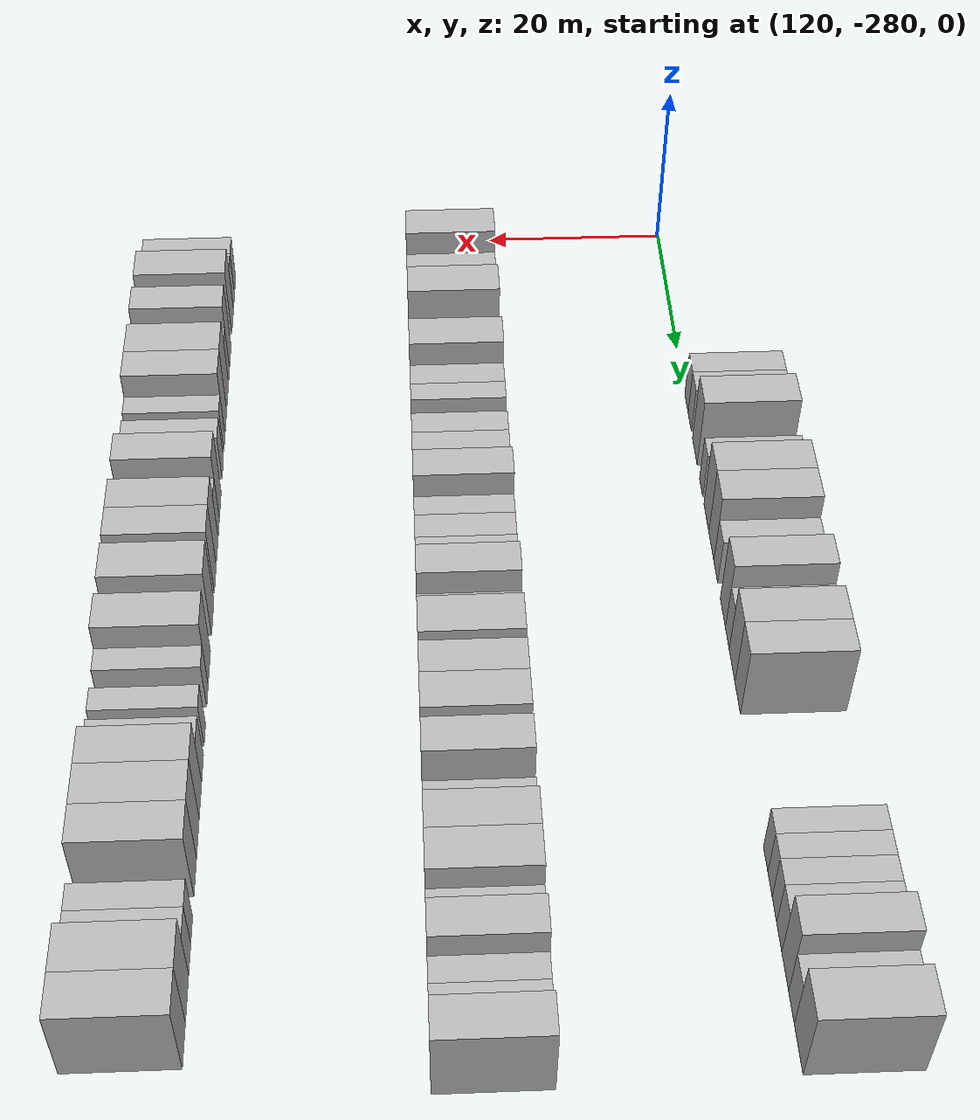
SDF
<sdf version="1.6">
 <world name="default">
  <model name="building_726">
   <static>1</static>
   <pose>115.0000 -251.1635 0 0.000000 0.000000 0.000000</pose>
   <link name="link">
    <pose>0 0 3.00 0 0 0</pose>
    <collision name="collision"><geometry><box><size>10.0000 2.9496 6.0000</size></box></geometry></collision>
    <visual name="visual">
     <cast_shadows>0</cast_shadows>
     <geometry><box><size>10.0000 2.9496 6.0000</size></box></geometry>
     <material>
      <script>
       <uri>model://HANNAS_wall/materials/scripts</uri>
       <uri>model://HANNAS_wall/materials/textures</uri>
       <name>vrc/HANNAS_wall</name>
      </script>
     </material>
    </visual>
   </link>
  </model>
  <model name="building_727">
   <static>1</static>
   <pose>115.0000 -248.2471 0 0.000000 0.000000 0.000000</pose>
   <link name="link">
    <pose>0 0 3.00 0 0 0</pose>
    <collision name="collision"><geometry><box><size>10.0000 2.8832 6.0000</size></box></geometry></collision>
    <visual name="visual">
     <cast_shadows>0</cast_shadows>
     <geometry><box><size>10.0000 2.8832 6.0000</size></box></geometry>
     <material>
      <script>
       <uri>model://HANNAS_wall/materials/scripts</uri>
       <uri>model://HANNAS_wall/materials/textures</uri>
       <name>vrc/HANNAS_wall</name>
      </script>
     </material>
    </visual>
   </link>
  </model>
  <model name="building_728">
   <static>1</static>
   <pose>115.0000 -243.7850 0 0.000000 0.000000 0.000000</pose>
   <link name="link">
    <pose>0 0 4.50 0 0 0</pose>
    <collision name="collision"><geometry><box><size>10.0000 4.0409 9.0000</size></box></geometry></collision>
    <visual name="visual">
     <cast_shadows>0</cast_shadows>
     <geometry><box><size>10.0000 4.0409 9.0000</size></box></geometry>
     <material>
      <script>
       <uri>model://HANNAS_wall/materials/scripts</uri>
       <uri>model://HANNAS_wall/materials/textures</uri>
       <name>vrc/HANNAS_wall</name>
      </script>
     </material>
    </visual>
   </link>
  </model>
  <model name="building_729">
   <static>1</static>
   <pose>115.0000 -238.4365 0 0.000000 0.000000 0.000000</pose>
   <link name="link">
    <pose>0 0 3.00 0 0 0</pose>
    <collision name="collision"><geometry><box><size>10.0000 2.6561 6.0000</size></box></geometry></collision>
    <visual name="visual">
     <cast_shadows>0</cast_shadows>
     <geometry><box><size>10.0000 2.6561 6.0000</size></box></geometry>
     <material>
      <script>
       <uri>model://HANNAS_wall/materials/scripts</uri>
       <uri>model://HANNAS_wall/materials/textures</uri>
       <name>vrc/HANNAS_wall</name>
      </script>
     </material>
    </visual>
   </link>
  </model>
  <model name="building_730">
   <static>1</static>
   <pose>115.0000 -234.1329 0 0.000000 0.000000 0.000000</pose>
   <link name="link">
    <pose>0 0 4.50 0 0 0</pose>
    <collision name="collision"><geometry><box><size>10.0000 3.9511 9.0000</size></box></geometry></collision>
    <visual name="visual">
     <cast_shadows>0</cast_shadows>
     <geometry><box><size>10.0000 3.9511 9.0000</size></box></geometry>
     <material>
      <script>
       <uri>model://HANNAS_wall/materials/scripts</uri>
       <uri>model://HANNAS_wall/materials/textures</uri>
       <name>vrc/HANNAS_wall</name>
      </script>
     </material>
    </visual>
   </link>
  </model>
  <model name="building_731">
   <static>1</static>
   <pose>115.0000 -230.1869 0 0.000000 0.000000 0.000000</pose>
   <link name="link">
    <pose>0 0 4.50 0 0 0</pose>
    <collision name="collision"><geometry><box><size>10.0000 3.9409 9.0000</size></box></geometry></collision>
    <visual name="visual">
     <cast_shadows>0</cast_shadows>
     <geometry><box><size>10.0000 3.9409 9.0000</size></box></geometry>
     <material>
      <script>
       <uri>model://HANNAS_wall/materials/scripts</uri>
       <uri>model://HANNAS_wall/materials/textures</uri>
       <name>vrc/HANNAS_wall</name>
      </script>
     </material>
    </visual>
   </link>
  </model>
  <model name="building_732">
   <static>1</static>
   <pose>115.0000 -226.7508 0 0.000000 0.000000 0.000000</pose>
   <link name="link">
    <pose>0 0 3.00 0 0 0</pose>
    <collision name="collision"><geometry><box><size>10.0000 2.9313 6.0000</size></box></geometry></collision>
    <visual name="visual">
     <cast_shadows>0</cast_shadows>
     <geometry><box><size>10.0000 2.9313 6.0000</size></box></geometry>
     <material>
      <script>
       <uri>model://HANNAS_wall/materials/scripts</uri>
       <uri>model://HANNAS_wall/materials/textures</uri>
       <name>vrc/HANNAS_wall</name>
      </script>
     </material>
    </visual>
   </link>
  </model>
  <model name="building_733">
   <static>1</static>
   <pose>115.0000 -221.4200 0 0.000000 0.000000 0.000000</pose>
   <link name="link">
    <pose>0 0 4.50 0 0 0</pose>
    <collision name="collision"><geometry><box><size>10.0000 3.7304 9.0000</size></box></geometry></collision>
    <visual name="visual">
     <cast_shadows>0</cast_shadows>
     <geometry><box><size>10.0000 3.7304 9.0000</size></box></geometry>
     <material>
      <script>
       <uri>model://HANNAS_wall/materials/scripts</uri>
       <uri>model://HANNAS_wall/materials/textures</uri>
       <name>vrc/HANNAS_wall</name>
      </script>
     </material>
    </visual>
   </link>
  </model>
  <model name="building_734">
   <static>1</static>
   <pose>115.0000 -218.1900 0 0.000000 0.000000 0.000000</pose>
   <link name="link">
    <pose>0 0 3.00 0 0 0</pose>
    <collision name="collision"><geometry><box><size>10.0000 2.7296 6.0000</size></box></geometry></collision>
    <visual name="visual">
     <cast_shadows>0</cast_shadows>
     <geometry><box><size>10.0000 2.7296 6.0000</size></box></geometry>
     <material>
      <script>
       <uri>model://HANNAS_wall/materials/scripts</uri>
       <uri>model://HANNAS_wall/materials/textures</uri>
       <name>vrc/HANNAS_wall</name>
      </script>
     </material>
    </visual>
   </link>
  </model>
  <model name="building_735">
   <static>1</static>
   <pose>115.0000 -214.8161 0 0.000000 0.000000 0.000000</pose>
   <link name="link">
    <pose>0 0 4.50 0 0 0</pose>
    <collision name="collision"><geometry><box><size>10.0000 4.0182 9.0000</size></box></geometry></collision>
    <visual name="visual">
     <cast_shadows>0</cast_shadows>
     <geometry><box><size>10.0000 4.0182 9.0000</size></box></geometry>
     <material>
      <script>
       <uri>model://HANNAS_wall/materials/scripts</uri>
       <uri>model://HANNAS_wall/materials/textures</uri>
       <name>vrc/HANNAS_wall</name>
      </script>
     </material>
    </visual>
   </link>
  </model>
  <model name="building_736">
   <static>1</static>
   <pose>115.0000 -210.9222 0 0.000000 0.000000 0.000000</pose>
   <link name="link">
    <pose>0 0 4.50 0 0 0</pose>
    <collision name="collision"><geometry><box><size>10.0000 3.7697 9.0000</size></box></geometry></collision>
    <visual name="visual">
     <cast_shadows>0</cast_shadows>
     <geometry><box><size>10.0000 3.7697 9.0000</size></box></geometry>
     <material>
      <script>
       <uri>model://HANNAS_wall/materials/scripts</uri>
       <uri>model://HANNAS_wall/materials/textures</uri>
       <name>vrc/HANNAS_wall</name>
      </script>
     </material>
    </visual>
   </link>
  </model>
  <model name="building_737">
   <static>1</static>
   <pose>115.0000 -193.1905 0 0.000000 0.000000 0.000000</pose>
   <link name="link">
    <pose>0 0 3.00 0 0 0</pose>
    <collision name="collision"><geometry><box><size>10.0000 2.5645 6.0000</size></box></geometry></collision>
    <visual name="visual">
     <cast_shadows>0</cast_shadows>
     <geometry><box><size>10.0000 2.5645 6.0000</size></box></geometry>
     <material>
      <script>
       <uri>model://HANNAS_wall/materials/scripts</uri>
       <uri>model://HANNAS_wall/materials/textures</uri>
       <name>vrc/HANNAS_wall</name>
      </script>
     </material>
    </visual>
   </link>
  </model>
  <model name="building_738">
   <static>1</static>
   <pose>115.0000 -190.6692 0 0.000000 0.000000 0.000000</pose>
   <link name="link">
    <pose>0 0 3.00 0 0 0</pose>
    <collision name="collision"><geometry><box><size>10.0000 2.4781 6.0000</size></box></geometry></collision>
    <visual name="visual">
     <cast_shadows>0</cast_shadows>
     <geometry><box><size>10.0000 2.4781 6.0000</size></box></geometry>
     <material>
      <script>
       <uri>model://HANNAS_wall/materials/scripts</uri>
       <uri>model://HANNAS_wall/materials/textures</uri>
       <name>vrc/HANNAS_wall</name>
      </script>
     </material>
    </visual>
   </link>
  </model>
  <model name="building_739">
   <static>1</static>
   <pose>115.0000 -188.1476 0 0.000000 0.000000 0.000000</pose>
   <link name="link">
    <pose>0 0 3.00 0 0 0</pose>
    <collision name="collision"><geometry><box><size>10.0000 2.5651 6.0000</size></box></geometry></collision>
    <visual name="visual">
     <cast_shadows>0</cast_shadows>
     <geometry><box><size>10.0000 2.5651 6.0000</size></box></geometry>
     <material>
      <script>
       <uri>model://HANNAS_wall/materials/scripts</uri>
       <uri>model://HANNAS_wall/materials/textures</uri>
       <name>vrc/HANNAS_wall</name>
      </script>
     </material>
    </visual>
   </link>
  </model>
  <model name="building_740">
   <static>1</static>
   <pose>115.0000 -185.4330 0 0.000000 0.000000 0.000000</pose>
   <link name="link">
    <pose>0 0 3.00 0 0 0</pose>
    <collision name="collision"><geometry><box><size>10.0000 2.8641 6.0000</size></box></geometry></collision>
    <visual name="visual">
     <cast_shadows>0</cast_shadows>
     <geometry><box><size>10.0000 2.8641 6.0000</size></box></geometry>
     <material>
      <script>
       <uri>model://HANNAS_wall/materials/scripts</uri>
       <uri>model://HANNAS_wall/materials/textures</uri>
       <name>vrc/HANNAS_wall</name>
      </script>
     </material>
    </visual>
   </link>
  </model>
  <model name="building_741">
   <static>1</static>
   <pose>115.0000 -182.1926 0 0.000000 0.000000 0.000000</pose>
   <link name="link">
    <pose>0 0 4.50 0 0 0</pose>
    <collision name="collision"><geometry><box><size>10.0000 3.6168 9.0000</size></box></geometry></collision>
    <visual name="visual">
     <cast_shadows>0</cast_shadows>
     <geometry><box><size>10.0000 3.6168 9.0000</size></box></geometry>
     <material>
      <script>
       <uri>model://HANNAS_wall/materials/scripts</uri>
       <uri>model://HANNAS_wall/materials/textures</uri>
       <name>vrc/HANNAS_wall</name>
      </script>
     </material>
    </visual>
   </link>
  </model>
  <model name="building_742">
   <static>1</static>
   <pose>115.0000 -178.8899 0 0.000000 0.000000 0.000000</pose>
   <link name="link">
    <pose>0 0 3.00 0 0 0</pose>
    <collision name="collision"><geometry><box><size>10.0000 2.9885 6.0000</size></box></geometry></collision>
    <visual name="visual">
     <cast_shadows>0</cast_shadows>
     <geometry><box><size>10.0000 2.9885 6.0000</size></box></geometry>
     <material>
      <script>
       <uri>model://HANNAS_wall/materials/scripts</uri>
       <uri>model://HANNAS_wall/materials/textures</uri>
       <name>vrc/HANNAS_wall</name>
      </script>
     </material>
    </visual>
   </link>
  </model>
  <model name="building_743">
   <static>1</static>
   <pose>115.0000 -175.1686 0 0.000000 0.000000 0.000000</pose>
   <link name="link">
    <pose>0 0 4.50 0 0 0</pose>
    <collision name="collision"><geometry><box><size>10.0000 4.4540 9.0000</size></box></geometry></collision>
    <visual name="visual">
     <cast_shadows>0</cast_shadows>
     <geometry><box><size>10.0000 4.4540 9.0000</size></box></geometry>
     <material>
      <script>
       <uri>model://HANNAS_wall/materials/scripts</uri>
       <uri>model://HANNAS_wall/materials/textures</uri>
       <name>vrc/HANNAS_wall</name>
      </script>
     </material>
    </visual>
   </link>
  </model>
  <model name="building_956">
   <static>1</static>
   <pose>145.0000 -272.5599 0 0.000000 0.000000 0.000000</pose>
   <link name="link">
    <pose>0 0 4.50 0 0 0</pose>
    <collision name="collision"><geometry><box><size>10.0000 4.1303 9.0000</size></box></geometry></collision>
    <visual name="visual">
     <cast_shadows>0</cast_shadows>
     <geometry><box><size>10.0000 4.1303 9.0000</size></box></geometry>
     <material>
      <script>
       <uri>model://HANNAS_wall/materials/scripts</uri>
       <uri>model://HANNAS_wall/materials/textures</uri>
       <name>vrc/HANNAS_wall</name>
      </script>
     </material>
    </visual>
   </link>
  </model>
  <model name="building_957">
   <static>1</static>
   <pose>145.0000 -269.0523 0 0.000000 0.000000 0.000000</pose>
   <link name="link">
    <pose>0 0 3.00 0 0 0</pose>
    <collision name="collision"><geometry><box><size>10.0000 2.8851 6.0000</size></box></geometry></collision>
    <visual name="visual">
     <cast_shadows>0</cast_shadows>
     <geometry><box><size>10.0000 2.8851 6.0000</size></box></geometry>
     <material>
      <script>
       <uri>model://HANNAS_wall/materials/scripts</uri>
       <uri>model://HANNAS_wall/materials/textures</uri>
       <name>vrc/HANNAS_wall</name>
      </script>
     </material>
    </visual>
   </link>
  </model>
  <model name="building_958">
   <static>1</static>
   <pose>145.0000 -266.1619 0 0.000000 0.000000 0.000000</pose>
   <link name="link">
    <pose>0 0 3.00 0 0 0</pose>
    <collision name="collision"><geometry><box><size>10.0000 2.8956 6.0000</size></box></geometry></collision>
    <visual name="visual">
     <cast_shadows>0</cast_shadows>
     <geometry><box><size>10.0000 2.8956 6.0000</size></box></geometry>
     <material>
      <script>
       <uri>model://HANNAS_wall/materials/scripts</uri>
       <uri>model://HANNAS_wall/materials/textures</uri>
       <name>vrc/HANNAS_wall</name>
      </script>
     </material>
    </visual>
   </link>
  </model>
  <model name="building_959">
   <static>1</static>
   <pose>145.0000 -262.6146 0 0.000000 0.000000 0.000000</pose>
   <link name="link">
    <pose>0 0 4.50 0 0 0</pose>
    <collision name="collision"><geometry><box><size>10.0000 4.1991 9.0000</size></box></geometry></collision>
    <visual name="visual">
     <cast_shadows>0</cast_shadows>
     <geometry><box><size>10.0000 4.1991 9.0000</size></box></geometry>
     <material>
      <script>
       <uri>model://HANNAS_wall/materials/scripts</uri>
       <uri>model://HANNAS_wall/materials/textures</uri>
       <name>vrc/HANNAS_wall</name>
      </script>
     </material>
    </visual>
   </link>
  </model>
  <model name="building_960">
   <static>1</static>
   <pose>145.0000 -257.2790 0 0.000000 0.000000 0.000000</pose>
   <link name="link">
    <pose>0 0 3.00 0 0 0</pose>
    <collision name="collision"><geometry><box><size>10.0000 2.4721 6.0000</size></box></geometry></collision>
    <visual name="visual">
     <cast_shadows>0</cast_shadows>
     <geometry><box><size>10.0000 2.4721 6.0000</size></box></geometry>
     <material>
      <script>
       <uri>model://HANNAS_wall/materials/scripts</uri>
       <uri>model://HANNAS_wall/materials/textures</uri>
       <name>vrc/HANNAS_wall</name>
      </script>
     </material>
    </visual>
   </link>
  </model>
  <model name="building_961">
   <static>1</static>
   <pose>145.0000 -254.0074 0 0.000000 0.000000 0.000000</pose>
   <link name="link">
    <pose>0 0 4.50 0 0 0</pose>
    <collision name="collision"><geometry><box><size>10.0000 4.0711 9.0000</size></box></geometry></collision>
    <visual name="visual">
     <cast_shadows>0</cast_shadows>
     <geometry><box><size>10.0000 4.0711 9.0000</size></box></geometry>
     <material>
      <script>
       <uri>model://HANNAS_wall/materials/scripts</uri>
       <uri>model://HANNAS_wall/materials/textures</uri>
       <name>vrc/HANNAS_wall</name>
      </script>
     </material>
    </visual>
   </link>
  </model>
  <model name="building_962">
   <static>1</static>
   <pose>145.0000 -250.5220 0 0.000000 0.000000 0.000000</pose>
   <link name="link">
    <pose>0 0 3.00 0 0 0</pose>
    <collision name="collision"><geometry><box><size>10.0000 2.8998 6.0000</size></box></geometry></collision>
    <visual name="visual">
     <cast_shadows>0</cast_shadows>
     <geometry><box><size>10.0000 2.8998 6.0000</size></box></geometry>
     <material>
      <script>
       <uri>model://HANNAS_wall/materials/scripts</uri>
       <uri>model://HANNAS_wall/materials/textures</uri>
       <name>vrc/HANNAS_wall</name>
      </script>
     </material>
    </visual>
   </link>
  </model>
  <model name="building_963">
   <static>1</static>
   <pose>145.0000 -247.8435 0 0.000000 0.000000 0.000000</pose>
   <link name="link">
    <pose>0 0 3.00 0 0 0</pose>
    <collision name="collision"><geometry><box><size>10.0000 2.4572 6.0000</size></box></geometry></collision>
    <visual name="visual">
     <cast_shadows>0</cast_shadows>
     <geometry><box><size>10.0000 2.4572 6.0000</size></box></geometry>
     <material>
      <script>
       <uri>model://HANNAS_wall/materials/scripts</uri>
       <uri>model://HANNAS_wall/materials/textures</uri>
       <name>vrc/HANNAS_wall</name>
      </script>
     </material>
    </visual>
   </link>
  </model>
  <model name="building_964">
   <static>1</static>
   <pose>145.0000 -243.2020 0 0.000000 0.000000 0.000000</pose>
   <link name="link">
    <pose>0 0 3.00 0 0 0</pose>
    <collision name="collision"><geometry><box><size>10.0000 2.8258 6.0000</size></box></geometry></collision>
    <visual name="visual">
     <cast_shadows>0</cast_shadows>
     <geometry><box><size>10.0000 2.8258 6.0000</size></box></geometry>
     <material>
      <script>
       <uri>model://HANNAS_wall/materials/scripts</uri>
       <uri>model://HANNAS_wall/materials/textures</uri>
       <name>vrc/HANNAS_wall</name>
      </script>
     </material>
    </visual>
   </link>
  </model>
  <model name="building_965">
   <static>1</static>
   <pose>145.0000 -240.2988 0 0.000000 0.000000 0.000000</pose>
   <link name="link">
    <pose>0 0 3.00 0 0 0</pose>
    <collision name="collision"><geometry><box><size>10.0000 2.9807 6.0000</size></box></geometry></collision>
    <visual name="visual">
     <cast_shadows>0</cast_shadows>
     <geometry><box><size>10.0000 2.9807 6.0000</size></box></geometry>
     <material>
      <script>
       <uri>model://HANNAS_wall/materials/scripts</uri>
       <uri>model://HANNAS_wall/materials/textures</uri>
       <name>vrc/HANNAS_wall</name>
      </script>
     </material>
    </visual>
   </link>
  </model>
  <model name="building_966">
   <static>1</static>
   <pose>145.0000 -237.5586 0 0.000000 0.000000 0.000000</pose>
   <link name="link">
    <pose>0 0 3.00 0 0 0</pose>
    <collision name="collision"><geometry><box><size>10.0000 2.4996 6.0000</size></box></geometry></collision>
    <visual name="visual">
     <cast_shadows>0</cast_shadows>
     <geometry><box><size>10.0000 2.4996 6.0000</size></box></geometry>
     <material>
      <script>
       <uri>model://HANNAS_wall/materials/scripts</uri>
       <uri>model://HANNAS_wall/materials/textures</uri>
       <name>vrc/HANNAS_wall</name>
      </script>
     </material>
    </visual>
   </link>
  </model>
  <model name="building_967">
   <static>1</static>
   <pose>145.0000 -234.4930 0 0.000000 0.000000 0.000000</pose>
   <link name="link">
    <pose>0 0 4.50 0 0 0</pose>
    <collision name="collision"><geometry><box><size>10.0000 3.6317 9.0000</size></box></geometry></collision>
    <visual name="visual">
     <cast_shadows>0</cast_shadows>
     <geometry><box><size>10.0000 3.6317 9.0000</size></box></geometry>
     <material>
      <script>
       <uri>model://HANNAS_wall/materials/scripts</uri>
       <uri>model://HANNAS_wall/materials/textures</uri>
       <name>vrc/HANNAS_wall</name>
      </script>
     </material>
    </visual>
   </link>
  </model>
  <model name="building_968">
   <static>1</static>
   <pose>145.0000 -231.4383 0 0.000000 0.000000 0.000000</pose>
   <link name="link">
    <pose>0 0 3.00 0 0 0</pose>
    <collision name="collision"><geometry><box><size>10.0000 2.4777 6.0000</size></box></geometry></collision>
    <visual name="visual">
     <cast_shadows>0</cast_shadows>
     <geometry><box><size>10.0000 2.4777 6.0000</size></box></geometry>
     <material>
      <script>
       <uri>model://HANNAS_wall/materials/scripts</uri>
       <uri>model://HANNAS_wall/materials/textures</uri>
       <name>vrc/HANNAS_wall</name>
      </script>
     </material>
    </visual>
   </link>
  </model>
  <model name="building_969">
   <static>1</static>
   <pose>145.0000 -228.7089 0 0.000000 0.000000 0.000000</pose>
   <link name="link">
    <pose>0 0 3.00 0 0 0</pose>
    <collision name="collision"><geometry><box><size>10.0000 2.9811 6.0000</size></box></geometry></collision>
    <visual name="visual">
     <cast_shadows>0</cast_shadows>
     <geometry><box><size>10.0000 2.9811 6.0000</size></box></geometry>
     <material>
      <script>
       <uri>model://HANNAS_wall/materials/scripts</uri>
       <uri>model://HANNAS_wall/materials/textures</uri>
       <name>vrc/HANNAS_wall</name>
      </script>
     </material>
    </visual>
   </link>
  </model>
  <model name="building_970">
   <static>1</static>
   <pose>145.0000 -225.9038 0 0.000000 0.000000 0.000000</pose>
   <link name="link">
    <pose>0 0 3.00 0 0 0</pose>
    <collision name="collision"><geometry><box><size>10.0000 2.6292 6.0000</size></box></geometry></collision>
    <visual name="visual">
     <cast_shadows>0</cast_shadows>
     <geometry><box><size>10.0000 2.6292 6.0000</size></box></geometry>
     <material>
      <script>
       <uri>model://HANNAS_wall/materials/scripts</uri>
       <uri>model://HANNAS_wall/materials/textures</uri>
       <name>vrc/HANNAS_wall</name>
      </script>
     </material>
    </visual>
   </link>
  </model>
  <model name="building_971">
   <static>1</static>
   <pose>145.0000 -221.7689 0 0.000000 0.000000 0.000000</pose>
   <link name="link">
    <pose>0 0 4.50 0 0 0</pose>
    <collision name="collision"><geometry><box><size>10.0000 3.6406 9.0000</size></box></geometry></collision>
    <visual name="visual">
     <cast_shadows>0</cast_shadows>
     <geometry><box><size>10.0000 3.6406 9.0000</size></box></geometry>
     <material>
      <script>
       <uri>model://HANNAS_wall/materials/scripts</uri>
       <uri>model://HANNAS_wall/materials/textures</uri>
       <name>vrc/HANNAS_wall</name>
      </script>
     </material>
    </visual>
   </link>
  </model>
  <model name="building_972">
   <static>1</static>
   <pose>145.0000 -218.5541 0 0.000000 0.000000 0.000000</pose>
   <link name="link">
    <pose>0 0 3.00 0 0 0</pose>
    <collision name="collision"><geometry><box><size>10.0000 2.7890 6.0000</size></box></geometry></collision>
    <visual name="visual">
     <cast_shadows>0</cast_shadows>
     <geometry><box><size>10.0000 2.7890 6.0000</size></box></geometry>
     <material>
      <script>
       <uri>model://HANNAS_wall/materials/scripts</uri>
       <uri>model://HANNAS_wall/materials/textures</uri>
       <name>vrc/HANNAS_wall</name>
      </script>
     </material>
    </visual>
   </link>
  </model>
  <model name="building_973">
   <static>1</static>
   <pose>145.0000 -215.0099 0 0.000000 0.000000 0.000000</pose>
   <link name="link">
    <pose>0 0 4.50 0 0 0</pose>
    <collision name="collision"><geometry><box><size>10.0000 4.2995 9.0000</size></box></geometry></collision>
    <visual name="visual">
     <cast_shadows>0</cast_shadows>
     <geometry><box><size>10.0000 4.2995 9.0000</size></box></geometry>
     <material>
      <script>
       <uri>model://HANNAS_wall/materials/scripts</uri>
       <uri>model://HANNAS_wall/materials/textures</uri>
       <name>vrc/HANNAS_wall</name>
      </script>
     </material>
    </visual>
   </link>
  </model>
  <model name="building_974">
   <static>1</static>
   <pose>145.0000 -210.0484 0 0.000000 0.000000 0.000000</pose>
   <link name="link">
    <pose>0 0 4.50 0 0 0</pose>
    <collision name="collision"><geometry><box><size>10.0000 3.6236 9.0000</size></box></geometry></collision>
    <visual name="visual">
     <cast_shadows>0</cast_shadows>
     <geometry><box><size>10.0000 3.6236 9.0000</size></box></geometry>
     <material>
      <script>
       <uri>model://HANNAS_wall/materials/scripts</uri>
       <uri>model://HANNAS_wall/materials/textures</uri>
       <name>vrc/HANNAS_wall</name>
      </script>
     </material>
    </visual>
   </link>
  </model>
  <model name="building_975">
   <static>1</static>
   <pose>145.0000 -206.2479 0 0.000000 0.000000 0.000000</pose>
   <link name="link">
    <pose>0 0 4.50 0 0 0</pose>
    <collision name="collision"><geometry><box><size>10.0000 3.9774 9.0000</size></box></geometry></collision>
    <visual name="visual">
     <cast_shadows>0</cast_shadows>
     <geometry><box><size>10.0000 3.9774 9.0000</size></box></geometry>
     <material>
      <script>
       <uri>model://HANNAS_wall/materials/scripts</uri>
       <uri>model://HANNAS_wall/materials/textures</uri>
       <name>vrc/HANNAS_wall</name>
      </script>
     </material>
    </visual>
   </link>
  </model>
  <model name="building_976">
   <static>1</static>
   <pose>145.0000 -201.4010 0 0.000000 0.000000 0.000000</pose>
   <link name="link">
    <pose>0 0 4.50 0 0 0</pose>
    <collision name="collision"><geometry><box><size>10.0000 3.7164 9.0000</size></box></geometry></collision>
    <visual name="visual">
     <cast_shadows>0</cast_shadows>
     <geometry><box><size>10.0000 3.7164 9.0000</size></box></geometry>
     <material>
      <script>
       <uri>model://HANNAS_wall/materials/scripts</uri>
       <uri>model://HANNAS_wall/materials/textures</uri>
       <name>vrc/HANNAS_wall</name>
      </script>
     </material>
    </visual>
   </link>
  </model>
  <model name="building_977">
   <static>1</static>
   <pose>145.0000 -197.0477 0 0.000000 0.000000 0.000000</pose>
   <link name="link">
    <pose>0 0 3.00 0 0 0</pose>
    <collision name="collision"><geometry><box><size>10.0000 2.9902 6.0000</size></box></geometry></collision>
    <visual name="visual">
     <cast_shadows>0</cast_shadows>
     <geometry><box><size>10.0000 2.9902 6.0000</size></box></geometry>
     <material>
      <script>
       <uri>model://HANNAS_wall/materials/scripts</uri>
       <uri>model://HANNAS_wall/materials/textures</uri>
       <name>vrc/HANNAS_wall</name>
      </script>
     </material>
    </visual>
   </link>
  </model>
  <model name="building_978">
   <static>1</static>
   <pose>145.0000 -193.6602 0 0.000000 0.000000 0.000000</pose>
   <link name="link">
    <pose>0 0 4.50 0 0 0</pose>
    <collision name="collision"><geometry><box><size>10.0000 3.7848 9.0000</size></box></geometry></collision>
    <visual name="visual">
     <cast_shadows>0</cast_shadows>
     <geometry><box><size>10.0000 3.7848 9.0000</size></box></geometry>
     <material>
      <script>
       <uri>model://HANNAS_wall/materials/scripts</uri>
       <uri>model://HANNAS_wall/materials/textures</uri>
       <name>vrc/HANNAS_wall</name>
      </script>
     </material>
    </visual>
   </link>
  </model>
  <model name="building_979">
   <static>1</static>
   <pose>145.0000 -189.7421 0 0.000000 0.000000 0.000000</pose>
   <link name="link">
    <pose>0 0 4.50 0 0 0</pose>
    <collision name="collision"><geometry><box><size>10.0000 4.0514 9.0000</size></box></geometry></collision>
    <visual name="visual">
     <cast_shadows>0</cast_shadows>
     <geometry><box><size>10.0000 4.0514 9.0000</size></box></geometry>
     <material>
      <script>
       <uri>model://HANNAS_wall/materials/scripts</uri>
       <uri>model://HANNAS_wall/materials/textures</uri>
       <name>vrc/HANNAS_wall</name>
      </script>
     </material>
    </visual>
   </link>
  </model>
  <model name="building_980">
   <static>1</static>
   <pose>145.0000 -186.3840 0 0.000000 0.000000 0.000000</pose>
   <link name="link">
    <pose>0 0 3.00 0 0 0</pose>
    <collision name="collision"><geometry><box><size>10.0000 2.6649 6.0000</size></box></geometry></collision>
    <visual name="visual">
     <cast_shadows>0</cast_shadows>
     <geometry><box><size>10.0000 2.6649 6.0000</size></box></geometry>
     <material>
      <script>
       <uri>model://HANNAS_wall/materials/scripts</uri>
       <uri>model://HANNAS_wall/materials/textures</uri>
       <name>vrc/HANNAS_wall</name>
      </script>
     </material>
    </visual>
   </link>
  </model>
  <model name="building_981">
   <static>1</static>
   <pose>145.0000 -183.2496 0 0.000000 0.000000 0.000000</pose>
   <link name="link">
    <pose>0 0 4.50 0 0 0</pose>
    <collision name="collision"><geometry><box><size>10.0000 3.6041 9.0000</size></box></geometry></collision>
    <visual name="visual">
     <cast_shadows>0</cast_shadows>
     <geometry><box><size>10.0000 3.6041 9.0000</size></box></geometry>
     <material>
      <script>
       <uri>model://HANNAS_wall/materials/scripts</uri>
       <uri>model://HANNAS_wall/materials/textures</uri>
       <name>vrc/HANNAS_wall</name>
      </script>
     </material>
    </visual>
   </link>
  </model>
  <model name="building_982">
   <static>1</static>
   <pose>145.0000 -180.2191 0 0.000000 0.000000 0.000000</pose>
   <link name="link">
    <pose>0 0 3.00 0 0 0</pose>
    <collision name="collision"><geometry><box><size>10.0000 2.4568 6.0000</size></box></geometry></collision>
    <visual name="visual">
     <cast_shadows>0</cast_shadows>
     <geometry><box><size>10.0000 2.4568 6.0000</size></box></geometry>
     <material>
      <script>
       <uri>model://HANNAS_wall/materials/scripts</uri>
       <uri>model://HANNAS_wall/materials/textures</uri>
       <name>vrc/HANNAS_wall</name>
      </script>
     </material>
    </visual>
   </link>
  </model>
  <model name="building_983">
   <static>1</static>
   <pose>145.0000 -177.6639 0 0.000000 0.000000 0.000000</pose>
   <link name="link">
    <pose>0 0 3.00 0 0 0</pose>
    <collision name="collision"><geometry><box><size>10.0000 2.6535 6.0000</size></box></geometry></collision>
    <visual name="visual">
     <cast_shadows>0</cast_shadows>
     <geometry><box><size>10.0000 2.6535 6.0000</size></box></geometry>
     <material>
      <script>
       <uri>model://HANNAS_wall/materials/scripts</uri>
       <uri>model://HANNAS_wall/materials/textures</uri>
       <name>vrc/HANNAS_wall</name>
      </script>
     </material>
    </visual>
   </link>
  </model>
  <model name="building_984">
   <static>1</static>
   <pose>145.0000 -174.4084 0 0.000000 0.000000 0.000000</pose>
   <link name="link">
    <pose>0 0 4.50 0 0 0</pose>
    <collision name="collision"><geometry><box><size>10.0000 3.8574 9.0000</size></box></geometry></collision>
    <visual name="visual">
     <cast_shadows>0</cast_shadows>
     <geometry><box><size>10.0000 3.8574 9.0000</size></box></geometry>
     <material>
      <script>
       <uri>model://HANNAS_wall/materials/scripts</uri>
       <uri>model://HANNAS_wall/materials/textures</uri>
       <name>vrc/HANNAS_wall</name>
      </script>
     </material>
    </visual>
   </link>
  </model>
  <model name="building_1193">
   <static>1</static>
   <pose>175.0000 -272.8892 0 0.000000 0.000000 0.000000</pose>
   <link name="link">
    <pose>0 0 3.00 0 0 0</pose>
    <collision name="collision"><geometry><box><size>10.0000 2.9626 6.0000</size></box></geometry></collision>
    <visual name="visual">
     <cast_shadows>0</cast_shadows>
     <geometry><box><size>10.0000 2.9626 6.0000</size></box></geometry>
     <material>
      <script>
       <uri>model://HANNAS_wall/materials/scripts</uri>
       <uri>model://HANNAS_wall/materials/textures</uri>
       <name>vrc/HANNAS_wall</name>
      </script>
     </material>
    </visual>
   </link>
  </model>
  <model name="building_1194">
   <static>1</static>
   <pose>175.0000 -269.9962 0 0.000000 0.000000 0.000000</pose>
   <link name="link">
    <pose>0 0 3.00 0 0 0</pose>
    <collision name="collision"><geometry><box><size>10.0000 2.8233 6.0000</size></box></geometry></collision>
    <visual name="visual">
     <cast_shadows>0</cast_shadows>
     <geometry><box><size>10.0000 2.8233 6.0000</size></box></geometry>
     <material>
      <script>
       <uri>model://HANNAS_wall/materials/scripts</uri>
       <uri>model://HANNAS_wall/materials/textures</uri>
       <name>vrc/HANNAS_wall</name>
      </script>
     </material>
    </visual>
   </link>
  </model>
  <model name="building_1195">
   <static>1</static>
   <pose>175.0000 -266.5198 0 0.000000 0.000000 0.000000</pose>
   <link name="link">
    <pose>0 0 4.50 0 0 0</pose>
    <collision name="collision"><geometry><box><size>10.0000 4.1295 9.0000</size></box></geometry></collision>
    <visual name="visual">
     <cast_shadows>0</cast_shadows>
     <geometry><box><size>10.0000 4.1295 9.0000</size></box></geometry>
     <material>
      <script>
       <uri>model://HANNAS_wall/materials/scripts</uri>
       <uri>model://HANNAS_wall/materials/textures</uri>
       <name>vrc/HANNAS_wall</name>
      </script>
     </material>
    </visual>
   </link>
  </model>
  <model name="building_1196">
   <static>1</static>
   <pose>175.0000 -260.6330 0 0.000000 0.000000 0.000000</pose>
   <link name="link">
    <pose>0 0 4.50 0 0 0</pose>
    <collision name="collision"><geometry><box><size>10.0000 3.6441 9.0000</size></box></geometry></collision>
    <visual name="visual">
     <cast_shadows>0</cast_shadows>
     <geometry><box><size>10.0000 3.6441 9.0000</size></box></geometry>
     <material>
      <script>
       <uri>model://HANNAS_wall/materials/scripts</uri>
       <uri>model://HANNAS_wall/materials/textures</uri>
       <name>vrc/HANNAS_wall</name>
      </script>
     </material>
    </visual>
   </link>
  </model>
  <model name="building_1197">
   <static>1</static>
   <pose>175.0000 -257.6020 0 0.000000 0.000000 0.000000</pose>
   <link name="link">
    <pose>0 0 3.00 0 0 0</pose>
    <collision name="collision"><geometry><box><size>10.0000 2.4179 6.0000</size></box></geometry></collision>
    <visual name="visual">
     <cast_shadows>0</cast_shadows>
     <geometry><box><size>10.0000 2.4179 6.0000</size></box></geometry>
     <material>
      <script>
       <uri>model://HANNAS_wall/materials/scripts</uri>
       <uri>model://HANNAS_wall/materials/textures</uri>
       <name>vrc/HANNAS_wall</name>
      </script>
     </material>
    </visual>
   </link>
  </model>
  <model name="building_1198">
   <static>1</static>
   <pose>175.0000 -254.2049 0 0.000000 0.000000 0.000000</pose>
   <link name="link">
    <pose>0 0 4.50 0 0 0</pose>
    <collision name="collision"><geometry><box><size>10.0000 4.3763 9.0000</size></box></geometry></collision>
    <visual name="visual">
     <cast_shadows>0</cast_shadows>
     <geometry><box><size>10.0000 4.3763 9.0000</size></box></geometry>
     <material>
      <script>
       <uri>model://HANNAS_wall/materials/scripts</uri>
       <uri>model://HANNAS_wall/materials/textures</uri>
       <name>vrc/HANNAS_wall</name>
      </script>
     </material>
    </visual>
   </link>
  </model>
  <model name="building_1199">
   <static>1</static>
   <pose>175.0000 -250.1231 0 0.000000 0.000000 0.000000</pose>
   <link name="link">
    <pose>0 0 4.50 0 0 0</pose>
    <collision name="collision"><geometry><box><size>10.0000 3.7874 9.0000</size></box></geometry></collision>
    <visual name="visual">
     <cast_shadows>0</cast_shadows>
     <geometry><box><size>10.0000 3.7874 9.0000</size></box></geometry>
     <material>
      <script>
       <uri>model://HANNAS_wall/materials/scripts</uri>
       <uri>model://HANNAS_wall/materials/textures</uri>
       <name>vrc/HANNAS_wall</name>
      </script>
     </material>
    </visual>
   </link>
  </model>
  <model name="building_1200">
   <static>1</static>
   <pose>175.0000 -246.9891 0 0.000000 0.000000 0.000000</pose>
   <link name="link">
    <pose>0 0 3.00 0 0 0</pose>
    <collision name="collision"><geometry><box><size>10.0000 2.4806 6.0000</size></box></geometry></collision>
    <visual name="visual">
     <cast_shadows>0</cast_shadows>
     <geometry><box><size>10.0000 2.4806 6.0000</size></box></geometry>
     <material>
      <script>
       <uri>model://HANNAS_wall/materials/scripts</uri>
       <uri>model://HANNAS_wall/materials/textures</uri>
       <name>vrc/HANNAS_wall</name>
      </script>
     </material>
    </visual>
   </link>
  </model>
  <model name="building_1201">
   <static>1</static>
   <pose>175.0000 -243.2506 0 0.000000 0.000000 0.000000</pose>
   <link name="link">
    <pose>0 0 3.00 0 0 0</pose>
    <collision name="collision"><geometry><box><size>10.0000 2.9964 6.0000</size></box></geometry></collision>
    <visual name="visual">
     <cast_shadows>0</cast_shadows>
     <geometry><box><size>10.0000 2.9964 6.0000</size></box></geometry>
     <material>
      <script>
       <uri>model://HANNAS_wall/materials/scripts</uri>
       <uri>model://HANNAS_wall/materials/textures</uri>
       <name>vrc/HANNAS_wall</name>
      </script>
     </material>
    </visual>
   </link>
  </model>
  <model name="building_1202">
   <static>1</static>
   <pose>175.0000 -237.9112 0 0.000000 0.000000 0.000000</pose>
   <link name="link">
    <pose>0 0 4.50 0 0 0</pose>
    <collision name="collision"><geometry><box><size>10.0000 3.6824 9.0000</size></box></geometry></collision>
    <visual name="visual">
     <cast_shadows>0</cast_shadows>
     <geometry><box><size>10.0000 3.6824 9.0000</size></box></geometry>
     <material>
      <script>
       <uri>model://HANNAS_wall/materials/scripts</uri>
       <uri>model://HANNAS_wall/materials/textures</uri>
       <name>vrc/HANNAS_wall</name>
      </script>
     </material>
    </visual>
   </link>
  </model>
  <model name="building_1203">
   <static>1</static>
   <pose>175.0000 -234.7555 0 0.000000 0.000000 0.000000</pose>
   <link name="link">
    <pose>0 0 3.00 0 0 0</pose>
    <collision name="collision"><geometry><box><size>10.0000 2.6289 6.0000</size></box></geometry></collision>
    <visual name="visual">
     <cast_shadows>0</cast_shadows>
     <geometry><box><size>10.0000 2.6289 6.0000</size></box></geometry>
     <material>
      <script>
       <uri>model://HANNAS_wall/materials/scripts</uri>
       <uri>model://HANNAS_wall/materials/textures</uri>
       <name>vrc/HANNAS_wall</name>
      </script>
     </material>
    </visual>
   </link>
  </model>
  <model name="building_1204">
   <static>1</static>
   <pose>175.0000 -231.5219 0 0.000000 0.000000 0.000000</pose>
   <link name="link">
    <pose>0 0 4.50 0 0 0</pose>
    <collision name="collision"><geometry><box><size>10.0000 3.8383 9.0000</size></box></geometry></collision>
    <visual name="visual">
     <cast_shadows>0</cast_shadows>
     <geometry><box><size>10.0000 3.8383 9.0000</size></box></geometry>
     <material>
      <script>
       <uri>model://HANNAS_wall/materials/scripts</uri>
       <uri>model://HANNAS_wall/materials/textures</uri>
       <name>vrc/HANNAS_wall</name>
      </script>
     </material>
    </visual>
   </link>
  </model>
  <model name="building_1205">
   <static>1</static>
   <pose>175.0000 -227.7912 0 0.000000 0.000000 0.000000</pose>
   <link name="link">
    <pose>0 0 4.50 0 0 0</pose>
    <collision name="collision"><geometry><box><size>10.0000 3.6231 9.0000</size></box></geometry></collision>
    <visual name="visual">
     <cast_shadows>0</cast_shadows>
     <geometry><box><size>10.0000 3.6231 9.0000</size></box></geometry>
     <material>
      <script>
       <uri>model://HANNAS_wall/materials/scripts</uri>
       <uri>model://HANNAS_wall/materials/textures</uri>
       <name>vrc/HANNAS_wall</name>
      </script>
     </material>
    </visual>
   </link>
  </model>
  <model name="building_1206">
   <static>1</static>
   <pose>175.0000 -222.8069 0 0.000000 0.000000 0.000000</pose>
   <link name="link">
    <pose>0 0 4.50 0 0 0</pose>
    <collision name="collision"><geometry><box><size>10.0000 4.3454 9.0000</size></box></geometry></collision>
    <visual name="visual">
     <cast_shadows>0</cast_shadows>
     <geometry><box><size>10.0000 4.3454 9.0000</size></box></geometry>
     <material>
      <script>
       <uri>model://HANNAS_wall/materials/scripts</uri>
       <uri>model://HANNAS_wall/materials/textures</uri>
       <name>vrc/HANNAS_wall</name>
      </script>
     </material>
    </visual>
   </link>
  </model>
  <model name="building_1207">
   <static>1</static>
   <pose>175.0000 -216.5829 0 0.000000 0.000000 0.000000</pose>
   <link name="link">
    <pose>0 0 4.50 0 0 0</pose>
    <collision name="collision"><geometry><box><size>10.0000 4.1025 9.0000</size></box></geometry></collision>
    <visual name="visual">
     <cast_shadows>0</cast_shadows>
     <geometry><box><size>10.0000 4.1025 9.0000</size></box></geometry>
     <material>
      <script>
       <uri>model://HANNAS_wall/materials/scripts</uri>
       <uri>model://HANNAS_wall/materials/textures</uri>
       <name>vrc/HANNAS_wall</name>
      </script>
     </material>
    </visual>
   </link>
  </model>
  <model name="building_1208">
   <static>1</static>
   <pose>175.0000 -213.2417 0 0.000000 0.000000 0.000000</pose>
   <link name="link">
    <pose>0 0 3.00 0 0 0</pose>
    <collision name="collision"><geometry><box><size>10.0000 2.5801 6.0000</size></box></geometry></collision>
    <visual name="visual">
     <cast_shadows>0</cast_shadows>
     <geometry><box><size>10.0000 2.5801 6.0000</size></box></geometry>
     <material>
      <script>
       <uri>model://HANNAS_wall/materials/scripts</uri>
       <uri>model://HANNAS_wall/materials/textures</uri>
       <name>vrc/HANNAS_wall</name>
      </script>
     </material>
    </visual>
   </link>
  </model>
  <model name="building_1209">
   <static>1</static>
   <pose>175.0000 -208.6672 0 0.000000 0.000000 0.000000</pose>
   <link name="link">
    <pose>0 0 3.00 0 0 0</pose>
    <collision name="collision"><geometry><box><size>10.0000 2.5689 6.0000</size></box></geometry></collision>
    <visual name="visual">
     <cast_shadows>0</cast_shadows>
     <geometry><box><size>10.0000 2.5689 6.0000</size></box></geometry>
     <material>
      <script>
       <uri>model://HANNAS_wall/materials/scripts</uri>
       <uri>model://HANNAS_wall/materials/textures</uri>
       <name>vrc/HANNAS_wall</name>
      </script>
     </material>
    </visual>
   </link>
  </model>
  <model name="building_1210">
   <static>1</static>
   <pose>175.0000 -204.8877 0 0.000000 0.000000 0.000000</pose>
   <link name="link">
    <pose>0 0 3.00 0 0 0</pose>
    <collision name="collision"><geometry><box><size>10.0000 2.9900 6.0000</size></box></geometry></collision>
    <visual name="visual">
     <cast_shadows>0</cast_shadows>
     <geometry><box><size>10.0000 2.9900 6.0000</size></box></geometry>
     <material>
      <script>
       <uri>model://HANNAS_wall/materials/scripts</uri>
       <uri>model://HANNAS_wall/materials/textures</uri>
       <name>vrc/HANNAS_wall</name>
      </script>
     </material>
    </visual>
   </link>
  </model>
  <model name="building_1211">
   <static>1</static>
   <pose>175.0000 -201.4375 0 0.000000 0.000000 0.000000</pose>
   <link name="link">
    <pose>0 0 4.50 0 0 0</pose>
    <collision name="collision"><geometry><box><size>10.0000 3.9104 9.0000</size></box></geometry></collision>
    <visual name="visual">
     <cast_shadows>0</cast_shadows>
     <geometry><box><size>10.0000 3.9104 9.0000</size></box></geometry>
     <material>
      <script>
       <uri>model://HANNAS_wall/materials/scripts</uri>
       <uri>model://HANNAS_wall/materials/textures</uri>
       <name>vrc/HANNAS_wall</name>
      </script>
     </material>
    </visual>
   </link>
  </model>
  <model name="building_1212">
   <static>1</static>
   <pose>175.0000 -197.4092 0 0.000000 0.000000 0.000000</pose>
   <link name="link">
    <pose>0 0 4.50 0 0 0</pose>
    <collision name="collision"><geometry><box><size>10.0000 4.1461 9.0000</size></box></geometry></collision>
    <visual name="visual">
     <cast_shadows>0</cast_shadows>
     <geometry><box><size>10.0000 4.1461 9.0000</size></box></geometry>
     <material>
      <script>
       <uri>model://HANNAS_wall/materials/scripts</uri>
       <uri>model://HANNAS_wall/materials/textures</uri>
       <name>vrc/HANNAS_wall</name>
      </script>
     </material>
    </visual>
   </link>
  </model>
  <model name="building_1213">
   <static>1</static>
   <pose>175.0000 -193.3945 0 0.000000 0.000000 0.000000</pose>
   <link name="link">
    <pose>0 0 4.50 0 0 0</pose>
    <collision name="collision"><geometry><box><size>10.0000 3.8833 9.0000</size></box></geometry></collision>
    <visual name="visual">
     <cast_shadows>0</cast_shadows>
     <geometry><box><size>10.0000 3.8833 9.0000</size></box></geometry>
     <material>
      <script>
       <uri>model://HANNAS_wall/materials/scripts</uri>
       <uri>model://HANNAS_wall/materials/textures</uri>
       <name>vrc/HANNAS_wall</name>
      </script>
     </material>
    </visual>
   </link>
  </model>
  <model name="building_1214">
   <static>1</static>
   <pose>175.0000 -188.1445 0 0.000000 0.000000 0.000000</pose>
   <link name="link">
    <pose>0 0 3.00 0 0 0</pose>
    <collision name="collision"><geometry><box><size>10.0000 2.6167 6.0000</size></box></geometry></collision>
    <visual name="visual">
     <cast_shadows>0</cast_shadows>
     <geometry><box><size>10.0000 2.6167 6.0000</size></box></geometry>
     <material>
      <script>
       <uri>model://HANNAS_wall/materials/scripts</uri>
       <uri>model://HANNAS_wall/materials/textures</uri>
       <name>vrc/HANNAS_wall</name>
      </script>
     </material>
    </visual>
   </link>
  </model>
  <model name="building_1215">
   <static>1</static>
   <pose>175.0000 -185.3763 0 0.000000 0.000000 0.000000</pose>
   <link name="link">
    <pose>0 0 3.00 0 0 0</pose>
    <collision name="collision"><geometry><box><size>10.0000 2.9198 6.0000</size></box></geometry></collision>
    <visual name="visual">
     <cast_shadows>0</cast_shadows>
     <geometry><box><size>10.0000 2.9198 6.0000</size></box></geometry>
     <material>
      <script>
       <uri>model://HANNAS_wall/materials/scripts</uri>
       <uri>model://HANNAS_wall/materials/textures</uri>
       <name>vrc/HANNAS_wall</name>
      </script>
     </material>
    </visual>
   </link>
  </model>
  <model name="building_1216">
   <static>1</static>
   <pose>175.0000 -181.7154 0 0.000000 0.000000 0.000000</pose>
   <link name="link">
    <pose>0 0 4.50 0 0 0</pose>
    <collision name="collision"><geometry><box><size>10.0000 4.4019 9.0000</size></box></geometry></collision>
    <visual name="visual">
     <cast_shadows>0</cast_shadows>
     <geometry><box><size>10.0000 4.4019 9.0000</size></box></geometry>
     <material>
      <script>
       <uri>model://HANNAS_wall/materials/scripts</uri>
       <uri>model://HANNAS_wall/materials/textures</uri>
       <name>vrc/HANNAS_wall</name>
      </script>
     </material>
    </visual>
   </link>
  </model>
  <model name="building_1217">
   <static>1</static>
   <pose>175.0000 -177.4814 0 0.000000 0.000000 0.000000</pose>
   <link name="link">
    <pose>0 0 4.50 0 0 0</pose>
    <collision name="collision"><geometry><box><size>10.0000 4.0662 9.0000</size></box></geometry></collision>
    <visual name="visual">
     <cast_shadows>0</cast_shadows>
     <geometry><box><size>10.0000 4.0662 9.0000</size></box></geometry>
     <material>
      <script>
       <uri>model://HANNAS_wall/materials/scripts</uri>
       <uri>model://HANNAS_wall/materials/textures</uri>
       <name>vrc/HANNAS_wall</name>
      </script>
     </material>
    </visual>
   </link>
  </model>
 </world>
</sdf>
